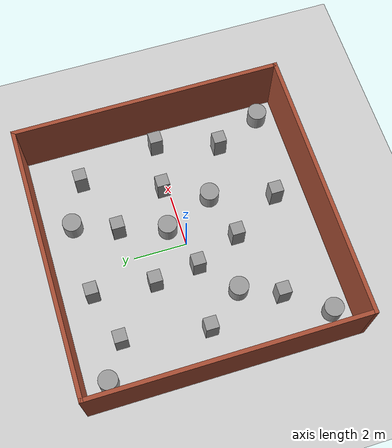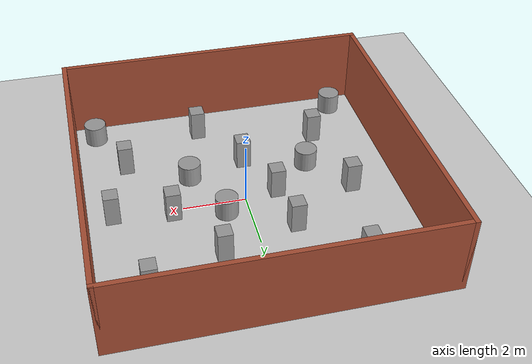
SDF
<sdf version="1.7">
 <world name="default">
  <light name="sun" type="directional">
   <pose>0 0 10 0 -0 0</pose>
   <diffuse>0.8 0.8 0.8 1</diffuse>
   <specular>0.2 0.2 0.2 1</specular>
   <attenuation>
    <range>1000</range>
    <constant>0.9</constant>
    <linear>0.01</linear>
    <quadratic>0.001</quadratic>
   </attenuation>
   <direction>-0.5 0.1 -0.9</direction>
   <spot><inner_angle>0</inner_angle><outer_angle>0</outer_angle><falloff>0</falloff></spot>
  </light>
  <model name="ground_plane">
   <static>1</static>
   <link name="link">
    <collision name="collision">
     <geometry><plane><normal>0 0 1</normal><size>100 100</size></plane></geometry>
     <surface><friction><ode><mu>100</mu><mu2>50</mu2></ode></friction></surface>
    </collision>
    <visual name="visual">
     <cast_shadows>0</cast_shadows>
     <geometry><plane><normal>0 0 1</normal><size>100 100</size></plane></geometry>
     <material>
      <script><uri>file://media/materials/scripts/gazebo.material</uri><name>Gazebo/Grey</name></script>
     </material>
    </visual>
   </link>
  </model>
  <gravity>0 0 -9.8</gravity>
  <magnetic_field>6e-06 2.3e-05 -4.2e-05</magnetic_field>
  <atmosphere type="adiabatic"/>
  <physics type="ode"><max_step_size>0.01</max_step_size></physics>
  <scene><ambient>0.4 0.4 0.4 1</ambient><background>0.7 0.7 0.7 1</background><shadows>1</shadows></scene>
  <spherical_coordinates>
   <surface_model>EARTH_WGS84</surface_model>
   <latitude_deg>0</latitude_deg>
   <longitude_deg>0</longitude_deg>
   <elevation>0</elevation>
   <heading_deg>0</heading_deg>
  </spherical_coordinates>
  <model name="5_5_empty">
   <link name="Wall_0">
    <collision name="Wall_0_Collision">
     <geometry><box><size>10.15 0.15 2.5</size></box></geometry>
     <pose>0 0 1.25 0 -0 0</pose>
    </collision>
    <visual name="Wall_0_Visual">
     <pose>0 0 1.25 0 -0 0</pose>
     <geometry><box><size>10.15 0.15 2.5</size></box></geometry>
     <material>
      <script><uri>file://media/materials/scripts/gazebo.material</uri><name>Gazebo/Bricks</name></script>
      <ambient>0.996078 0.47451 0.0196078 1</ambient>
     </material>
     <meta><layer>0</layer></meta>
    </visual>
    <pose>-5 0 0 0 -0 1.5708</pose>
   </link>
   <link name="Wall_2">
    <collision name="Wall_2_Collision">
     <geometry><box><size>10.15 0.15 2.5</size></box></geometry>
     <pose>0 0 1.25 0 -0 0</pose>
    </collision>
    <visual name="Wall_2_Visual">
     <pose>0 0 1.25 0 -0 0</pose>
     <geometry><box><size>10.15 0.15 2.5</size></box></geometry>
     <material>
      <script><uri>file://media/materials/scripts/gazebo.material</uri><name>Gazebo/Bricks</name></script>
      <ambient>0.996078 0.47451 0.0196078 1</ambient>
     </material>
     <meta><layer>0</layer></meta>
    </visual>
    <pose>0 5 0 0 -0 0</pose>
   </link>
   <link name="Wall_3">
    <collision name="Wall_3_Collision">
     <geometry><box><size>10.15 0.15 2.5</size></box></geometry>
     <pose>0 0 1.25 0 -0 0</pose>
    </collision>
    <visual name="Wall_3_Visual">
     <pose>0 0 1.25 0 -0 0</pose>
     <geometry><box><size>10.15 0.15 2.5</size></box></geometry>
     <material>
      <script><uri>file://media/materials/scripts/gazebo.material</uri><name>Gazebo/Bricks</name></script>
      <ambient>0.996078 0.47451 0.0196078 1</ambient>
     </material>
     <meta><layer>0</layer></meta>
    </visual>
    <pose>5 0 0 0 -0 -1.5708</pose>
   </link>
   <link name="Wall_4">
    <collision name="Wall_4_Collision">
     <geometry><box><size>0.15 0.15 2.5</size></box></geometry>
     <pose>0 0 1.25 0 -0 0</pose>
    </collision>
    <visual name="Wall_4_Visual">
     <pose>0 0 1.25 0 -0 0</pose>
     <geometry><box><size>0.15 0.15 2.5</size></box></geometry>
     <material>
      <script><uri>file://media/materials/scripts/gazebo.material</uri><name>Gazebo/Bricks</name></script>
      <ambient>0.996078 0.47451 0.0196078 1</ambient>
     </material>
     <meta><layer>0</layer></meta>
    </visual>
    <pose>5 -5 0 0 -0 0</pose>
   </link>
   <link name="Wall_6">
    <collision name="Wall_6_Collision">
     <geometry><box><size>10.15 0.15 2.5</size></box></geometry>
     <pose>0 0 1.25 0 -0 0</pose>
    </collision>
    <visual name="Wall_6_Visual">
     <pose>0 0 1.25 0 -0 0</pose>
     <geometry><box><size>10.15 0.15 2.5</size></box></geometry>
     <material>
      <script><uri>file://media/materials/scripts/gazebo.material</uri><name>Gazebo/Bricks</name></script>
      <ambient>0.996078 0.47451 0.0196078 1</ambient>
     </material>
     <meta><layer>0</layer></meta>
    </visual>
    <pose>0 -5 0 0 -0 0</pose>
   </link>
   <static>1</static>
  </model>
  <model name="unit_box">
   <pose>-1.20679 1.53462 0.5 0 -0 0</pose>
   <link name="link">
    <inertial>
     <mass>1</mass>
     <inertia>
      <ixx>0.166667</ixx>
      <ixy>0</ixy>
      <ixz>0</ixz>
      <iyy>0.166667</iyy>
      <iyz>0</iyz>
      <izz>0.166667</izz>
     </inertia>
    </inertial>
    <collision name="collision"><geometry><box><size>0.462424 0.478799 1</size></box></geometry></collision>
    <visual name="visual">
     <geometry><box><size>0.462424 0.478799 1</size></box></geometry>
     <material>
      <script><name>Gazebo/Grey</name><uri>file://media/materials/scripts/gazebo.material</uri></script>
     </material>
    </visual>
   </link>
  </model>
  <model name="unit_box_clone">
   <pose>-3.40529 0.141094 0.500001 1e-06 2e-06 -5.5e-05</pose>
   <link name="link">
    <inertial>
     <mass>1</mass>
     <inertia>
      <ixx>0.166667</ixx>
      <ixy>0</ixy>
      <ixz>0</ixz>
      <iyy>0.166667</iyy>
      <iyz>0</iyz>
      <izz>0.166667</izz>
     </inertia>
    </inertial>
    <collision name="collision"><geometry><box><size>0.462424 0.478799 1</size></box></geometry></collision>
    <visual name="visual">
     <geometry><box><size>0.462424 0.478799 1</size></box></geometry>
     <material>
      <script><name>Gazebo/Grey</name><uri>file://media/materials/scripts/gazebo.material</uri></script>
     </material>
    </visual>
   </link>
  </model>
  <model name="unit_box_clone_0">
   <pose>1.18193 2.27893 0.500001 -2e-06 1e-06 2.6e-05</pose>
   <link name="link">
    <inertial>
     <mass>1</mass>
     <inertia>
      <ixx>0.166667</ixx>
      <ixy>0</ixy>
      <ixz>0</ixz>
      <iyy>0.166667</iyy>
      <iyz>0</iyz>
      <izz>0.166667</izz>
     </inertia>
    </inertial>
    <collision name="collision"><geometry><box><size>0.462424 0.478799 1</size></box></geometry></collision>
    <visual name="visual">
     <geometry><box><size>0.462424 0.478799 1</size></box></geometry>
     <material>
      <script><name>Gazebo/Grey</name><uri>file://media/materials/scripts/gazebo.material</uri></script>
     </material>
    </visual>
   </link>
  </model>
  <model name="unit_box_clone_1">
   <pose>-0.305237 -1.84439 0.5 0 -0 1.5e-05</pose>
   <link name="link">
    <inertial>
     <mass>1</mass>
     <inertia>
      <ixx>0.166667</ixx>
      <ixy>0</ixy>
      <ixz>0</ixz>
      <iyy>0.166667</iyy>
      <iyz>0</iyz>
      <izz>0.166667</izz>
     </inertia>
    </inertial>
    <collision name="collision"><geometry><box><size>0.462424 0.478799 1</size></box></geometry></collision>
    <visual name="visual">
     <geometry><box><size>0.462424 0.478799 1</size></box></geometry>
     <material>
      <script><name>Gazebo/Grey</name><uri>file://media/materials/scripts/gazebo.material</uri></script>
     </material>
    </visual>
   </link>
  </model>
  <model name="unit_box_clone_2">
   <pose>3.46815 -2.35684 0.5 0 0 -2.6e-05</pose>
   <link name="link">
    <inertial>
     <mass>1</mass>
     <inertia>
      <ixx>0.166667</ixx>
      <ixy>0</ixy>
      <ixz>0</ixz>
      <iyy>0.166667</iyy>
      <iyz>0</iyz>
      <izz>0.166667</izz>
     </inertia>
    </inertial>
    <collision name="collision"><geometry><box><size>0.462424 0.478799 1</size></box></geometry></collision>
    <visual name="visual">
     <geometry><box><size>0.462424 0.478799 1</size></box></geometry>
     <material>
      <script><name>Gazebo/Grey</name><uri>file://media/materials/scripts/gazebo.material</uri></script>
     </material>
    </visual>
   </link>
  </model>
  <model name="unit_box_clone_3">
   <pose>2.33917 0.228319 0.499998 -6e-06 -3e-06 -5.1e-05</pose>
   <link name="link">
    <inertial>
     <mass>1</mass>
     <inertia>
      <ixx>0.166667</ixx>
      <ixy>0</ixy>
      <ixz>0</ixz>
      <iyy>0.166667</iyy>
      <iyz>0</iyz>
      <izz>0.166667</izz>
     </inertia>
    </inertial>
    <collision name="collision"><geometry><box><size>0.462424 0.478799 1</size></box></geometry></collision>
    <visual name="visual">
     <geometry><box><size>0.462424 0.478799 1</size></box></geometry>
     <material>
      <script><name>Gazebo/Grey</name><uri>file://media/materials/scripts/gazebo.material</uri></script>
     </material>
    </visual>
   </link>
  </model>
  <model name="unit_box_clone_4">
   <pose>-2.93823 -2.69854 0.5 0 -0 7e-06</pose>
   <link name="link">
    <inertial>
     <mass>1</mass>
     <inertia>
      <ixx>0.166667</ixx>
      <ixy>0</ixy>
      <ixz>0</ixz>
      <iyy>0.166667</iyy>
      <iyz>0</iyz>
      <izz>0.166667</izz>
     </inertia>
    </inertial>
    <collision name="collision"><geometry><box><size>0.462424 0.478799 1</size></box></geometry></collision>
    <visual name="visual">
     <geometry><box><size>0.462424 0.478799 1</size></box></geometry>
     <material>
      <script><name>Gazebo/Grey</name><uri>file://media/materials/scripts/gazebo.material</uri></script>
     </material>
    </visual>
   </link>
  </model>
  <model name="unit_box_clone_5">
   <pose>-2.91428 3.28442 0.499998 5e-06 4e-06 -1e-05</pose>
   <link name="link">
    <inertial>
     <mass>1</mass>
     <inertia>
      <ixx>0.166667</ixx>
      <ixy>0</ixy>
      <ixz>0</ixz>
      <iyy>0.166667</iyy>
      <iyz>0</iyz>
      <izz>0.166667</izz>
     </inertia>
    </inertial>
    <collision name="collision"><geometry><box><size>0.462424 0.478799 1</size></box></geometry></collision>
    <visual name="visual">
     <geometry><box><size>0.462424 0.478799 1</size></box></geometry>
     <material>
      <script><name>Gazebo/Grey</name><uri>file://media/materials/scripts/gazebo.material</uri></script>
     </material>
    </visual>
   </link>
  </model>
  <model name="unit_box_clone_6">
   <pose>3.46225 3.11292 0.500001 1e-06 2e-06 -2.4e-05</pose>
   <link name="link">
    <inertial>
     <mass>1</mass>
     <inertia>
      <ixx>0.166667</ixx>
      <ixy>0</ixy>
      <ixz>0</ixz>
      <iyy>0.166667</iyy>
      <iyz>0</iyz>
      <izz>0.166667</izz>
     </inertia>
    </inertial>
    <collision name="collision"><geometry><box><size>0.462424 0.478799 1</size></box></geometry></collision>
    <visual name="visual">
     <geometry><box><size>0.462424 0.478799 1</size></box></geometry>
     <material>
      <script><name>Gazebo/Grey</name><uri>file://media/materials/scripts/gazebo.material</uri></script>
     </material>
    </visual>
   </link>
  </model>
  <model name="unit_box_clone_1_clone">
   <pose>-1.01835 -0.135116 0.500001 2e-06 0 -1.9e-05</pose>
   <link name="link">
    <inertial>
     <mass>1</mass>
     <inertia>
      <ixx>0.166667</ixx>
      <ixy>0</ixy>
      <ixz>0</ixz>
      <iyy>0.166667</iyy>
      <iyz>0</iyz>
      <izz>0.166667</izz>
     </inertia>
    </inertial>
    <collision name="collision"><geometry><box><size>0.462424 0.478799 1</size></box></geometry></collision>
    <visual name="visual">
     <geometry><box><size>0.462424 0.478799 1</size></box></geometry>
     <material>
      <script><name>Gazebo/Grey</name><uri>file://media/materials/scripts/gazebo.material</uri></script>
     </material>
    </visual>
   </link>
  </model>
  <model name="unit_box_clone_1_clone_0">
   <pose>0.850204 -3.73683 0.500001 1e-06 4e-06 -5.2e-05</pose>
   <link name="link">
    <inertial>
     <mass>1</mass>
     <inertia>
      <ixx>0.166667</ixx>
      <ixy>0</ixy>
      <ixz>0</ixz>
      <iyy>0.166667</iyy>
      <iyz>0</iyz>
      <izz>0.166667</izz>
     </inertia>
    </inertial>
    <collision name="collision"><geometry><box><size>0.462424 0.478799 1</size></box></geometry></collision>
    <visual name="visual">
     <geometry><box><size>0.462424 0.478799 1</size></box></geometry>
     <material>
      <script><name>Gazebo/Grey</name><uri>file://media/materials/scripts/gazebo.material</uri></script>
     </material>
    </visual>
   </link>
  </model>
  <model name="unit_box_clone_1_clone_1">
   <pose>4.1697 -0.023264 0.500001 2e-06 0 -1.9e-05</pose>
   <link name="link">
    <inertial>
     <mass>1</mass>
     <inertia>
      <ixx>0.166667</ixx>
      <ixy>0</ixy>
      <ixz>0</ixz>
      <iyy>0.166667</iyy>
      <iyz>0</iyz>
      <izz>0.166667</izz>
     </inertia>
    </inertial>
    <collision name="collision"><geometry><box><size>0.462424 0.478799 1</size></box></geometry></collision>
    <visual name="visual">
     <geometry><box><size>0.462424 0.478799 1</size></box></geometry>
     <material>
      <script><name>Gazebo/Grey</name><uri>file://media/materials/scripts/gazebo.material</uri></script>
     </material>
    </visual>
   </link>
  </model>
  <model name="unit_box_clone_1_clone_2">
   <pose>-0.966551 3.82334 0.5 0 -0 9e-06</pose>
   <link name="link">
    <inertial>
     <mass>1</mass>
     <inertia>
      <ixx>0.166667</ixx>
      <ixy>0</ixy>
      <ixz>0</ixz>
      <iyy>0.166667</iyy>
      <iyz>0</iyz>
      <izz>0.166667</izz>
     </inertia>
    </inertial>
    <collision name="collision"><geometry><box><size>0.462424 0.478799 1</size></box></geometry></collision>
    <visual name="visual">
     <geometry><box><size>0.462424 0.478799 1</size></box></geometry>
     <material>
      <script><name>Gazebo/Grey</name><uri>file://media/materials/scripts/gazebo.material</uri></script>
     </material>
    </visual>
   </link>
  </model>
  <model name="unit_cylinder">
   <pose>-2.30576 -1.27122 0.338371 0 -0 0</pose>
   <link name="link">
    <inertial>
     <mass>1</mass>
     <inertia><ixx>0.145833</ixx><ixy>0</ixy><ixz>0</ixz><iyy>0.145833</iyy><iyz>0</iyz><izz>0.125</izz></inertia>
    </inertial>
    <collision name="collision">
     <geometry><cylinder><radius>0.35588</radius><length>0.676742</length></cylinder></geometry>
    </collision>
    <visual name="visual">
     <geometry><cylinder><radius>0.35588</radius><length>0.676742</length></cylinder></geometry>
     <material>
      <script><name>Gazebo/Grey</name><uri>file://media/materials/scripts/gazebo.material</uri></script>
     </material>
    </visual>
   </link>
  </model>
  <model name="unit_cylinder_clone">
   <pose>1.5349 -1.37697 0.338364 -3e-06 -3e-06 0</pose>
   <link name="link">
    <inertial>
     <mass>1</mass>
     <inertia><ixx>0.145833</ixx><ixy>0</ixy><ixz>0</ixz><iyy>0.145833</iyy><iyz>0</iyz><izz>0.125</izz></inertia>
    </inertial>
    <collision name="collision">
     <geometry><cylinder><radius>0.355879</radius><length>0.676742</length></cylinder></geometry>
    </collision>
    <visual name="visual">
     <geometry><cylinder><radius>0.355879</radius><length>0.676742</length></cylinder></geometry>
     <material>
      <script><name>Gazebo/Grey</name><uri>file://media/materials/scripts/gazebo.material</uri></script>
     </material>
    </visual>
   </link>
  </model>
  <model name="unit_cylinder_clone_0">
   <pose>0.722721 0.501262 0.338368 3e-06 3e-06 0</pose>
   <link name="link">
    <inertial>
     <mass>1</mass>
     <inertia><ixx>0.145833</ixx><ixy>0</ixy><ixz>0</ixz><iyy>0.145833</iyy><iyz>0</iyz><izz>0.125</izz></inertia>
    </inertial>
    <collision name="collision">
     <geometry><cylinder><radius>0.355879</radius><length>0.676742</length></cylinder></geometry>
    </collision>
    <visual name="visual">
     <geometry><cylinder><radius>0.355879</radius><length>0.676742</length></cylinder></geometry>
     <material>
      <script><name>Gazebo/Grey</name><uri>file://media/materials/scripts/gazebo.material</uri></script>
     </material>
    </visual>
   </link>
  </model>
  <model name="unit_cylinder_clone_1">
   <pose>1.81374 3.86016 0.338368 3e-06 3e-06 0</pose>
   <link name="link">
    <inertial>
     <mass>1</mass>
     <inertia><ixx>0.145833</ixx><ixy>0</ixy><ixz>0</ixz><iyy>0.145833</iyy><iyz>0</iyz><izz>0.125</izz></inertia>
    </inertial>
    <collision name="collision">
     <geometry><cylinder><radius>0.355879</radius><length>0.676742</length></cylinder></geometry>
    </collision>
    <visual name="visual">
     <geometry><cylinder><radius>0.355879</radius><length>0.676742</length></cylinder></geometry>
     <material>
      <script><name>Gazebo/Grey</name><uri>file://media/materials/scripts/gazebo.material</uri></script>
     </material>
    </visual>
   </link>
  </model>
  <model name="unit_cylinder_clone_2">
   <pose>-4.03044 -4.23382 0.33837 0 -0 0</pose>
   <link name="link">
    <inertial>
     <mass>1</mass>
     <inertia><ixx>0.145833</ixx><ixy>0</ixy><ixz>0</ixz><iyy>0.145833</iyy><iyz>0</iyz><izz>0.125</izz></inertia>
    </inertial>
    <collision name="collision">
     <geometry><cylinder><radius>0.355879</radius><length>0.676742</length></cylinder></geometry>
    </collision>
    <visual name="visual">
     <geometry><cylinder><radius>0.355879</radius><length>0.676742</length></cylinder></geometry>
     <material>
      <script><name>Gazebo/Grey</name><uri>file://media/materials/scripts/gazebo.material</uri></script>
     </material>
    </visual>
   </link>
  </model>
  <model name="unit_cylinder_clone_3">
   <pose>4.27236 -4.19046 0.338368 3e-06 3e-06 0</pose>
   <link name="link">
    <inertial>
     <mass>1</mass>
     <inertia><ixx>0.145833</ixx><ixy>0</ixy><ixz>0</ixz><iyy>0.145833</iyy><iyz>0</iyz><izz>0.125</izz></inertia>
    </inertial>
    <collision name="collision">
     <geometry><cylinder><radius>0.355879</radius><length>0.676742</length></cylinder></geometry>
    </collision>
    <visual name="visual">
     <geometry><cylinder><radius>0.355879</radius><length>0.676742</length></cylinder></geometry>
     <material>
      <script><name>Gazebo/Grey</name><uri>file://media/materials/scripts/gazebo.material</uri></script>
     </material>
    </visual>
   </link>
  </model>
  <model name="unit_cylinder_clone_4">
   <pose>-4.20895 4.07661 0.338364 -3e-06 -3e-06 0</pose>
   <link name="link">
    <inertial>
     <mass>1</mass>
     <inertia><ixx>0.145833</ixx><ixy>0</ixy><ixz>0</ixz><iyy>0.145833</iyy><iyz>0</iyz><izz>0.125</izz></inertia>
    </inertial>
    <collision name="collision">
     <geometry><cylinder><radius>0.355879</radius><length>0.676742</length></cylinder></geometry>
    </collision>
    <visual name="visual">
     <geometry><cylinder><radius>0.355879</radius><length>0.676742</length></cylinder></geometry>
     <material>
      <script><name>Gazebo/Grey</name><uri>file://media/materials/scripts/gazebo.material</uri></script>
     </material>
    </visual>
   </link>
  </model>
 </world>
</sdf>
